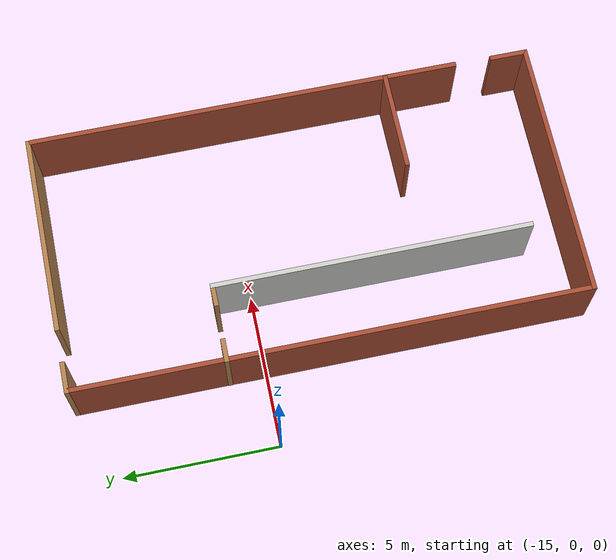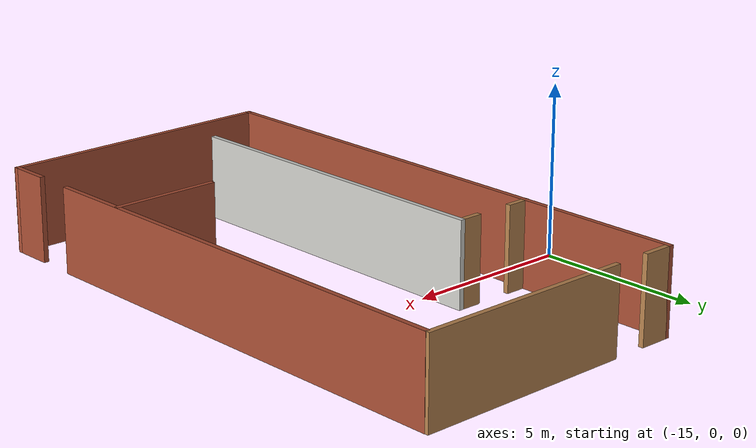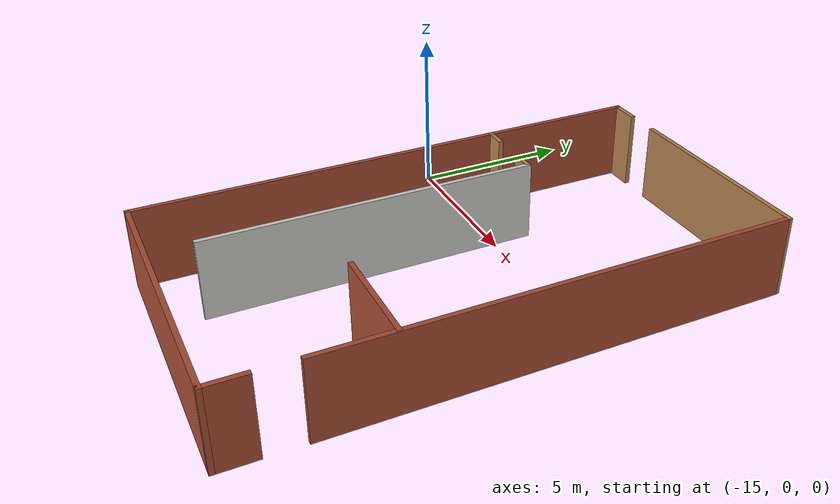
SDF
<?xml version='1.0'?>
<sdf version='1.6'>
  <model name='meet_room'>
    <pose frame=''>-8.45396 -2.13556 0 0 -0 0</pose>
    <link name='Wall_0'>
      <collision name='Wall_0_Collision'>
        <geometry>
          <box>
            <size>16.5 0.15 2.5</size>
          </box>
        </geometry>
        <pose frame=''>0 0 1.25 0 -0 0</pose>
      </collision>
      <visual name='Wall_0_Visual'>
        <pose frame=''>0 0 1.25 0 -0 0</pose>
        <geometry>
          <box>
            <size>16.5 0.15 2.5</size>
          </box>
        </geometry>
        <material>
          <script>
            <uri>file://media/materials/scripts/gazebo.material</uri>
            <name>Gazebo/Bricks</name>
          </script>
          <ambient>1 1 1 1</ambient>
        </material>
        <meta>
          <layer>0</layer>
        </meta>
      </visual>
      <pose frame=''>-4.18284 -0 0 0 -0 -1.5708</pose>
    </link>
    <link name='Wall_1'>
      <collision name='Wall_1_Collision'>
        <geometry>
          <box>
            <size>8.5 0.15 2.5</size>
          </box>
        </geometry>
        <pose frame=''>0 0 1.25 0 -0 0</pose>
      </collision>
      <visual name='Wall_1_Visual'>
        <pose frame=''>0 0 1.25 0 -0 0</pose>
        <geometry>
          <box>
            <size>8.5 0.15 2.5</size>
          </box>
        </geometry>
        <material>
          <script>
            <uri>file://media/materials/scripts/gazebo.material</uri>
            <name>Gazebo/Bricks</name>
          </script>
          <ambient>1 1 1 1</ambient>
        </material>
        <meta>
          <layer>0</layer>
        </meta>
      </visual>
      <pose frame=''>-0.007837 -8.175 0 0 -0 0</pose>
    </link>
    <link name='Wall_19'>
      <collision name='Wall_19_Collision'>
        <geometry>
          <box>
            <size>10.25 0.15 2.5</size>
          </box>
        </geometry>
        <pose frame=''>0 0 1.25 0 -0 0</pose>
      </collision>
      <visual name='Wall_19_Visual'>
        <pose frame=''>0 0 1.25 0 -0 0</pose>
        <geometry>
          <box>
            <size>10.25 0.15 2.5</size>
          </box>
        </geometry>
        <material>
          <script>
            <uri>file://media/materials/scripts/gazebo.material</uri>
            <name>Gazebo/CeilingTiled</name>
          </script>
          <ambient>1 1 1 1</ambient>
        </material>
        <meta>
          <layer>0</layer>
        </meta>
      </visual>
      <pose frame=''>-1.76891 -1.75518 0 0 -0 -1.5708</pose>
    </link>
    <link name='Wall_2'>
      <collision name='Wall_2_Collision'>
        <geometry>
          <box>
            <size>1.25 0.15 2.5</size>
          </box>
        </geometry>
        <pose frame=''>0 0 1.25 0 -0 0</pose>
      </collision>
      <visual name='Wall_2_Visual'>
        <pose frame=''>0 0 1.25 0 -0 0</pose>
        <geometry>
          <box>
            <size>1.25 0.15 2.5</size>
          </box>
        </geometry>
        <material>
          <script>
            <uri>file://media/materials/scripts/gazebo.material</uri>
            <name>Gazebo/Bricks</name>
          </script>
          <ambient>1 1 1 1</ambient>
        </material>
        <meta>
          <layer>0</layer>
        </meta>
      </visual>
      <pose frame=''>4.16716 -7.625 0 0 -0 1.5708</pose>
    </link>
    <link name='Wall_21'>
      <collision name='Wall_21_Collision'>
        <geometry>
          <box>
            <size>0.75 0.15 2.5</size>
          </box>
        </geometry>
        <pose frame=''>0 0 1.25 0 -0 0</pose>
      </collision>
      <visual name='Wall_21_Visual'>
        <pose frame=''>0 0 1.25 0 -0 0</pose>
        <geometry>
          <box>
            <size>0.75 0.15 2.5</size>
          </box>
        </geometry>
        <material>
          <script>
            <uri>file://media/materials/scripts/gazebo.material</uri>
            <name>Gazebo/Wood</name>
          </script>
          <ambient>1 1 1 1</ambient>
        </material>
        <meta>
          <layer>0</layer>
        </meta>
      </visual>
      <pose frame=''>-2.06891 3.29482 0 0 -0 3.14159</pose>
    </link>
    <link name='Wall_23'>
      <collision name='Wall_23_Collision'>
        <geometry>
          <box>
            <size>0.75 0.15 2.5</size>
          </box>
        </geometry>
        <pose frame=''>0 0 1.25 0 -0 0</pose>
      </collision>
      <visual name='Wall_23_Visual'>
        <pose frame=''>0 0 1.25 0 -0 0</pose>
        <geometry>
          <box>
            <size>0.75 0.15 2.5</size>
          </box>
        </geometry>
        <material>
          <script>
            <uri>file://media/materials/scripts/gazebo.material</uri>
            <name>Gazebo/Wood</name>
          </script>
          <ambient>1 1 1 1</ambient>
        </material>
        <meta>
          <layer>0</layer>
        </meta>
      </visual>
      <pose frame=''>-3.89147 3.30694 0 0 -0 0</pose>
    </link>
    <link name='Wall_25'>
      <collision name='Wall_25_Collision'>
        <geometry>
          <box>
            <size>3.25 0.15 2.5</size>
          </box>
        </geometry>
        <pose frame=''>0 0 1.25 0 -0 0</pose>
      </collision>
      <visual name='Wall_25_Visual'>
        <pose frame=''>0 0 1.25 0 -0 0</pose>
        <geometry>
          <box>
            <size>3.25 0.15 2.5</size>
          </box>
        </geometry>
        <material>
          <script>
            <uri>file://media/materials/scripts/gazebo.material</uri>
            <name>Gazebo/Bricks</name>
          </script>
          <ambient>1 1 1 1</ambient>
        </material>
        <meta>
          <layer>0</layer>
        </meta>
      </visual>
      <pose frame=''>2.60446 -3.4935 0 0 -0 3.14159</pose>
    </link>
    <link name='Wall_4'>
      <collision name='Wall_4_Collision'>
        <geometry>
          <box>
            <size>1 0.15 2.5</size>
          </box>
        </geometry>
        <pose frame=''>0 0 1.25 0 -0 0</pose>
      </collision>
      <visual name='Wall_4_Visual'>
        <pose frame=''>0 0 1.25 0 -0 0</pose>
        <geometry>
          <box>
            <size>1 0.15 2.5</size>
          </box>
        </geometry>
        <material>
          <script>
            <uri>file://media/materials/scripts/gazebo.material</uri>
            <name>Gazebo/Wood</name>
          </script>
          <ambient>1 1 1 1</ambient>
        </material>
        <meta>
          <layer>0</layer>
        </meta>
      </visual>
      <pose frame=''>-3.75784 8.175 0 0 -0 0</pose>
    </link>
    <link name='Wall_6'>
      <collision name='Wall_6_Collision'>
        <geometry>
          <box>
            <size>14 0.15 2.5</size>
          </box>
        </geometry>
        <pose frame=''>0 0 1.25 0 -0 0</pose>
      </collision>
      <visual name='Wall_6_Visual'>
        <pose frame=''>0 0 1.25 0 -0 0</pose>
        <geometry>
          <box>
            <size>14 0.15 2.5</size>
          </box>
        </geometry>
        <material>
          <script>
            <uri>file://media/materials/scripts/gazebo.material</uri>
            <name>Gazebo/Bricks</name>
          </script>
          <ambient>1 1 1 1</ambient>
        </material>
        <meta>
          <layer>0</layer>
        </meta>
      </visual>
      <pose frame=''>4.19147 1.14283 0 0 -0 1.5708</pose>
    </link>
    <link name='Wall_8'>
      <collision name='Wall_8_Collision'>
        <geometry>
          <box>
            <size>6.5 0.15 2.5</size>
          </box>
        </geometry>
        <pose frame=''>0 0 1.25 0 -0 0</pose>
      </collision>
      <visual name='Wall_8_Visual'>
        <pose frame=''>0 0 1.25 0 -0 0</pose>
        <geometry>
          <box>
            <size>6.5 0.15 2.5</size>
          </box>
        </geometry>
        <material>
          <script>
            <uri>file://media/materials/scripts/gazebo.material</uri>
            <name>Gazebo/Wood</name>
          </script>
          <ambient>1 1 1 1</ambient>
        </material>
        <meta>
          <layer>0</layer>
        </meta>
      </visual>
      <pose frame=''>1.00836 8.175 0 0 -0 0</pose>
    </link>
    <static>1</static>
  </model>
</sdf>
